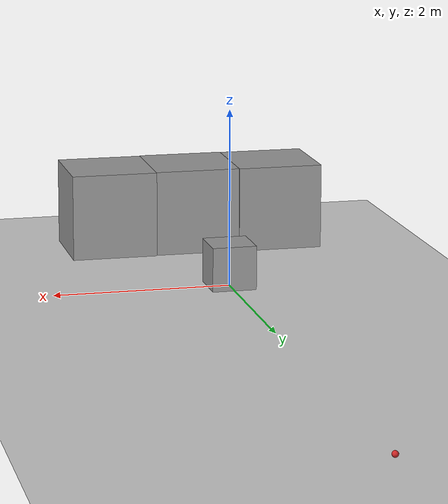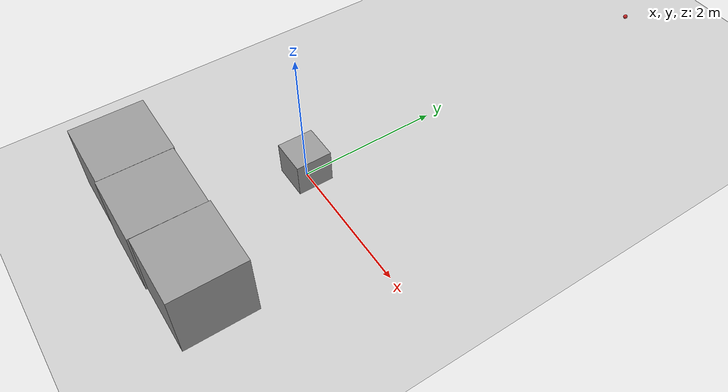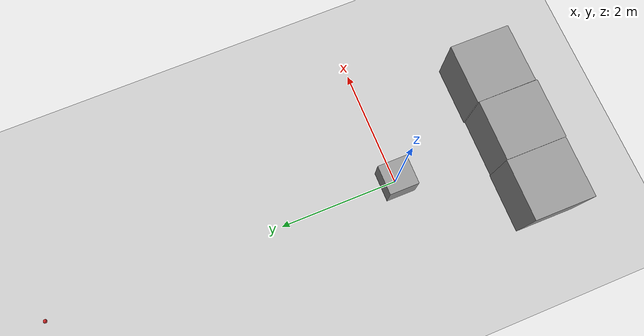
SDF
<sdf version="1.6">
 <world name="default">
  <light name="sun" type="directional">
   <pose>0 0 10 0 -0 0</pose>
   <diffuse>0.8 0.8 0.8 1</diffuse>
   <specular>0.2 0.2 0.2 1</specular>
   <attenuation>
    <range>1000</range>
    <constant>0.9</constant>
    <linear>0.01</linear>
    <quadratic>0.001</quadratic>
   </attenuation>
   <direction>-0.5 0.1 -0.9</direction>
  </light>
  <model name="ground_plane">
   <static>1</static>
   <link name="link">
    <collision name="collision">
     <geometry><plane><normal>0 0 1</normal><size>100 100</size></plane></geometry>
     <surface>
      <contact><collide_bitmask>65535</collide_bitmask></contact>
      <friction><ode><mu>100</mu><mu2>50</mu2></ode></friction>
     </surface>
    </collision>
    <visual name="visual">
     <cast_shadows>0</cast_shadows>
     <geometry><plane><normal>0 0 1</normal><size>100 100</size></plane></geometry>
     <material>
      <script><uri>file://media/materials/scripts/gazebo.material</uri><name>Gazebo/Grey</name></script>
     </material>
    </visual>
   </link>
  </model>
  <gravity>0 0 -9.8</gravity>
  <magnetic_field>6e-06 2.3e-05 -4.2e-05</magnetic_field>
  <atmosphere type="adiabatic"/>
  <physics name="default_physics" default="0" type="ode">
   <max_step_size>0.001</max_step_size>
   <real_time_factor>1</real_time_factor>
   <real_time_update_rate>1000</real_time_update_rate>
  </physics>
  <scene><ambient>0.4 0.4 0.4 1</ambient><background>0.7 0.7 0.7 1</background><shadows>1</shadows></scene>
  <audio><device>default</device></audio>
  <spherical_coordinates>
   <surface_model>EARTH_WGS84</surface_model>
   <latitude_deg>0</latitude_deg>
   <longitude_deg>0</longitude_deg>
   <elevation>0</elevation>
   <heading_deg>0</heading_deg>
  </spherical_coordinates>
  <model name="unit_box">
   <link name="link">
    <inertial>
     <mass>1</mass>
     <inertia>
      <ixx>0.166667</ixx>
      <ixy>0</ixy>
      <ixz>0</ixz>
      <iyy>0.166667</iyy>
      <iyz>0</iyz>
      <izz>0.166667</izz>
     </inertia>
    </inertial>
    <visual name="visual">
     <geometry><box><size>0.5 0.5 0.5</size></box></geometry>
     <material>
      <script><name>Gazebo/Grey</name><uri>file://media/materials/scripts/gazebo.material</uri></script>
      <shader type="vertex"><normal_map>__default__</normal_map></shader>
      <ambient>0.3 0.3 0.3 1</ambient>
      <diffuse>0.7 0.7 0.7 1</diffuse>
      <specular>0.01 0.01 0.01 1</specular>
      <emissive>0 0 0 1</emissive>
     </material>
    </visual>
    <collision name="collision">
     <geometry><box><size>0.5 0.5 0.5</size></box></geometry>
     <surface>
      <friction>
       <ode><mu>1</mu><mu2>1</mu2><fdir1>0 0 0</fdir1><slip1>0</slip1><slip2>0</slip2></ode>
       <torsional>
        <coefficient>1</coefficient>
        <patch_radius>0</patch_radius>
        <surface_radius>0</surface_radius>
        <use_patch_radius>1</use_patch_radius>
        <ode><slip>0</slip></ode>
       </torsional>
      </friction>
      <bounce><restitution_coefficient>0</restitution_coefficient><threshold>1e+06</threshold></bounce>
      <contact>
       <collide_without_contact>0</collide_without_contact>
       <collide_without_contact_bitmask>1</collide_without_contact_bitmask>
       <collide_bitmask>1</collide_bitmask>
       <ode>
        <soft_cfm>0</soft_cfm>
        <soft_erp>0.2</soft_erp>
        <kp>1e+13</kp>
        <kd>1</kd>
        <max_vel>0.01</max_vel>
        <min_depth>0</min_depth>
       </ode>
       <bullet>
        <split_impulse>1</split_impulse>
        <split_impulse_penetration_threshold>-0.01</split_impulse_penetration_threshold>
        <soft_cfm>0</soft_cfm>
        <soft_erp>0.2</soft_erp>
        <kp>1e+13</kp>
        <kd>1</kd>
       </bullet>
      </contact>
     </surface>
    </collision>
   </link>
   <static>1</static>
   <pose>0 0 0.25 -1e-05 0 0</pose>
  </model>
  <model name="unit_box_0">
   <pose>-0.001003 -2.01666 0.499995 -1e-05 -0 -0.006294</pose>
   <link name="link">
    <inertial>
     <mass>1</mass>
     <inertia>
      <ixx>0.166667</ixx>
      <ixy>0</ixy>
      <ixz>0</ixz>
      <iyy>0.166667</iyy>
      <iyz>0</iyz>
      <izz>0.166667</izz>
     </inertia>
    </inertial>
    <collision name="collision"><geometry><box><size>1 1 1</size></box></geometry></collision>
    <visual name="visual">
     <geometry><box><size>1 1 1</size></box></geometry>
     <material>
      <script><name>Gazebo/Grey</name><uri>file://media/materials/scripts/gazebo.material</uri></script>
     </material>
    </visual>
   </link>
  </model>
  <model name="unit_box_1">
   <pose>-1.00218 -2.00002 0.499995 1e-05 0 -0.005878</pose>
   <link name="link">
    <inertial>
     <mass>1</mass>
     <inertia>
      <ixx>0.166667</ixx>
      <ixy>0</ixy>
      <ixz>0</ixz>
      <iyy>0.166667</iyy>
      <iyz>0</iyz>
      <izz>0.166667</izz>
     </inertia>
    </inertial>
    <collision name="collision"><geometry><box><size>1 1 1</size></box></geometry></collision>
    <visual name="visual">
     <geometry><box><size>1 1 1</size></box></geometry>
     <material>
      <script><name>Gazebo/Grey</name><uri>file://media/materials/scripts/gazebo.material</uri></script>
     </material>
    </visual>
   </link>
  </model>
  <model name="unit_box_2">
   <pose>1.00092 -1.99998 0.499995 -0 1e-05 -0.00257</pose>
   <link name="link">
    <inertial>
     <mass>1</mass>
     <inertia>
      <ixx>0.166667</ixx>
      <ixy>0</ixy>
      <ixz>0</ixz>
      <iyy>0.166667</iyy>
      <iyz>0</iyz>
      <izz>0.166667</izz>
     </inertia>
    </inertial>
    <collision name="collision"><geometry><box><size>1 1 1</size></box></geometry></collision>
    <visual name="visual">
     <geometry><box><size>1 1 1</size></box></geometry>
     <material>
      <script><name>Gazebo/Grey</name><uri>file://media/materials/scripts/gazebo.material</uri></script>
     </material>
    </visual>
   </link>
  </model>
  <model name="RoboCup SPL Ball">
   <static>0</static>
   <link name="ball">
    <inertial>
     <mass>0.0056</mass>
     <inertia>
      <ixx>2.37e-06</ixx>
      <iyy>2.37e-06</iyy>
      <izz>2.37e-06</izz>
      <ixy>0</ixy>
      <ixz>0</ixz>
      <iyz>0</iyz>
     </inertia>
    </inertial>
    <collision name="collision"><geometry><sphere><radius>0.0325</radius></sphere></geometry></collision>
    <visual name="visual">
     <geometry><sphere><radius>0.0325</radius></sphere></geometry>
     <material>
      <script><uri>file://media/materials/scripts/gazebo.material</uri><name>Gazebo/RedBright</name></script>
     </material>
    </visual>
   </link>
   <pose>0 6 0.0325 0 -0 0</pose>
  </model>
 </world>
</sdf>
